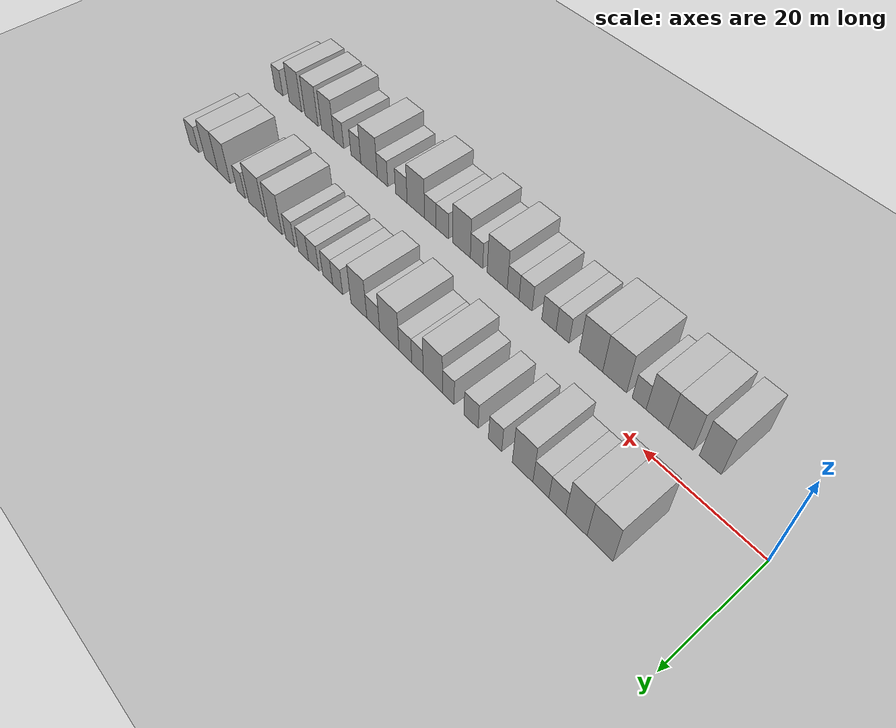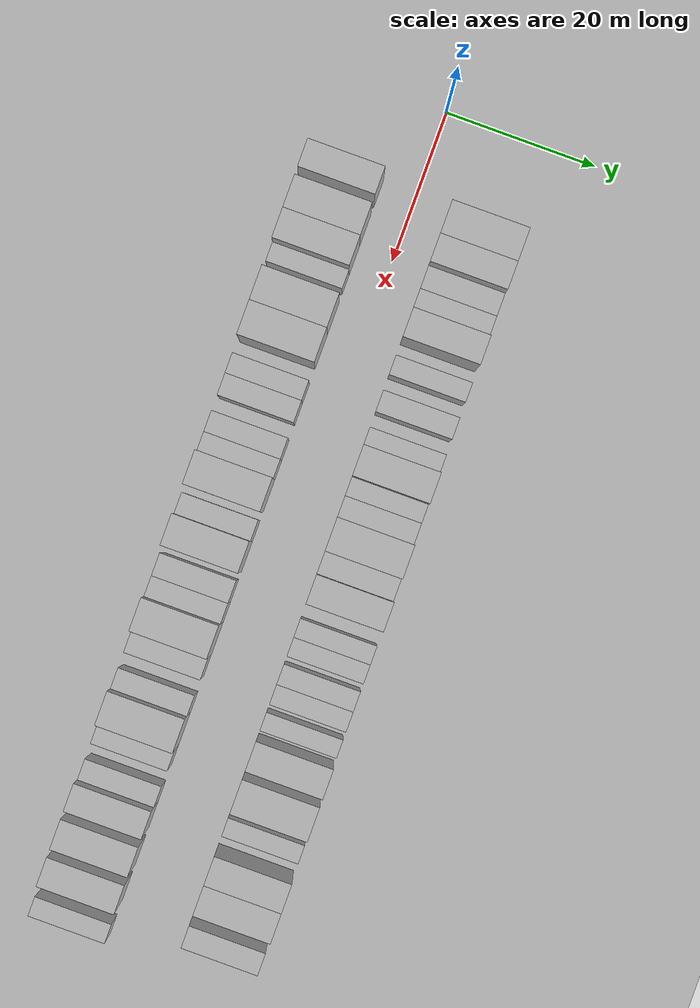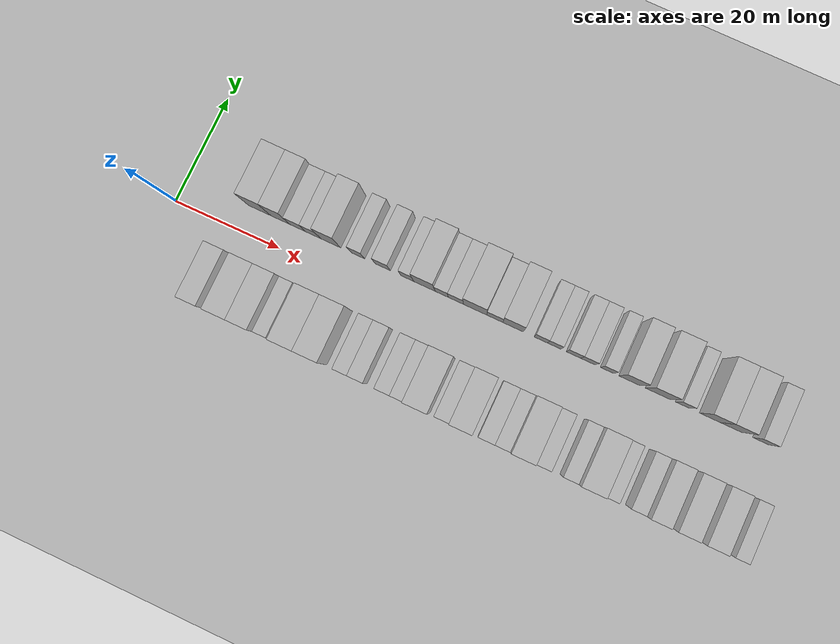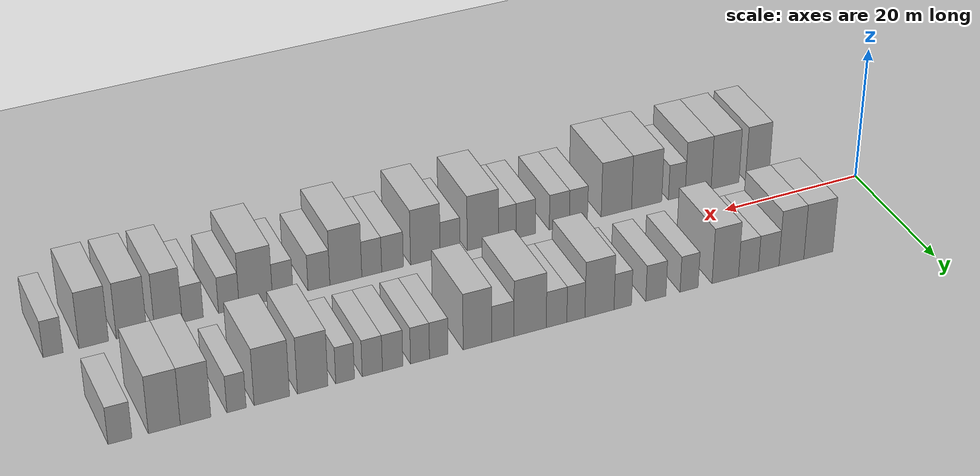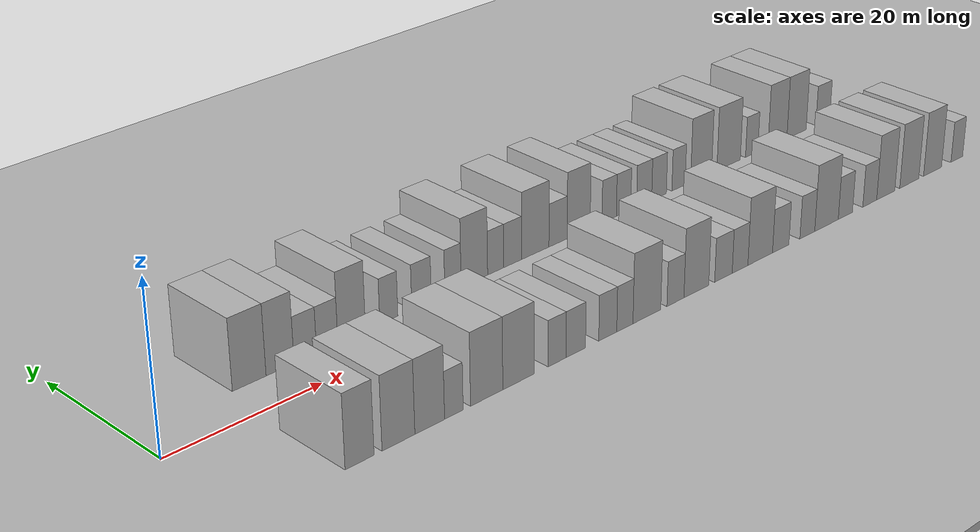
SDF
<sdf version="1.6">
 <world name="default">
  <include><name>ground_plane_1</name><uri>model://HANNAS_ground_plane</uri></include>
  <include>
   <name>ground_plane_2</name>
   <uri>model://HANNAS_ground_plane</uri>
   <pose>100 0 0  0 0 0</pose>
  </include>
  <model name="building_1">
   <static>1</static>
   <pose>14.1490 9.5000 0 0.000000 0.000000 1.570796</pose>
   <link name="link">
    <pose>0 0 4.50 0 0 0</pose>
    <collision name="collision"><geometry><box><size>10.0000 4.2981 9.0000</size></box></geometry></collision>
    <visual name="visual">
     <cast_shadows>0</cast_shadows>
     <geometry><box><size>10.0000 4.2981 9.0000</size></box></geometry>
     <material>
      <script>
       <uri>model://HANNAS_wall/materials/scripts</uri>
       <uri>model://HANNAS_wall/materials/textures</uri>
       <name>vrc/HANNAS_wall</name>
      </script>
     </material>
    </visual>
   </link>
  </model>
  <model name="building_2">
   <static>1</static>
   <pose>18.1220 9.5000 0 0.000000 0.000000 1.570796</pose>
   <link name="link">
    <pose>0 0 4.50 0 0 0</pose>
    <collision name="collision"><geometry><box><size>10.0000 3.6478 9.0000</size></box></geometry></collision>
    <visual name="visual">
     <cast_shadows>0</cast_shadows>
     <geometry><box><size>10.0000 3.6478 9.0000</size></box></geometry>
     <material>
      <script>
       <uri>model://HANNAS_wall/materials/scripts</uri>
       <uri>model://HANNAS_wall/materials/textures</uri>
       <name>vrc/HANNAS_wall</name>
      </script>
     </material>
    </visual>
   </link>
  </model>
  <model name="building_3">
   <static>1</static>
   <pose>21.4412 9.5000 0 0.000000 0.000000 1.570796</pose>
   <link name="link">
    <pose>0 0 3.00 0 0 0</pose>
    <collision name="collision"><geometry><box><size>10.0000 2.9907 6.0000</size></box></geometry></collision>
    <visual name="visual">
     <cast_shadows>0</cast_shadows>
     <geometry><box><size>10.0000 2.9907 6.0000</size></box></geometry>
     <material>
      <script>
       <uri>model://HANNAS_wall/materials/scripts</uri>
       <uri>model://HANNAS_wall/materials/textures</uri>
       <name>vrc/HANNAS_wall</name>
      </script>
     </material>
    </visual>
   </link>
  </model>
  <model name="building_4">
   <static>1</static>
   <pose>24.3763 9.5000 0 0.000000 0.000000 1.570796</pose>
   <link name="link">
    <pose>0 0 3.00 0 0 0</pose>
    <collision name="collision"><geometry><box><size>10.0000 2.8793 6.0000</size></box></geometry></collision>
    <visual name="visual">
     <cast_shadows>0</cast_shadows>
     <geometry><box><size>10.0000 2.8793 6.0000</size></box></geometry>
     <material>
      <script>
       <uri>model://HANNAS_wall/materials/scripts</uri>
       <uri>model://HANNAS_wall/materials/textures</uri>
       <name>vrc/HANNAS_wall</name>
      </script>
     </material>
    </visual>
   </link>
  </model>
  <model name="building_5">
   <static>1</static>
   <pose>27.7177 9.5000 0 0.000000 0.000000 1.570796</pose>
   <link name="link">
    <pose>0 0 4.50 0 0 0</pose>
    <collision name="collision"><geometry><box><size>10.0000 3.8036 9.0000</size></box></geometry></collision>
    <visual name="visual">
     <cast_shadows>0</cast_shadows>
     <geometry><box><size>10.0000 3.8036 9.0000</size></box></geometry>
     <material>
      <script>
       <uri>model://HANNAS_wall/materials/scripts</uri>
       <uri>model://HANNAS_wall/materials/textures</uri>
       <name>vrc/HANNAS_wall</name>
      </script>
     </material>
    </visual>
   </link>
  </model>
  <model name="building_6">
   <static>1</static>
   <pose>32.9033 9.5000 0 0.000000 0.000000 1.570796</pose>
   <link name="link">
    <pose>0 0 3.00 0 0 0</pose>
    <collision name="collision"><geometry><box><size>10.0000 2.5676 6.0000</size></box></geometry></collision>
    <visual name="visual">
     <cast_shadows>0</cast_shadows>
     <geometry><box><size>10.0000 2.5676 6.0000</size></box></geometry>
     <material>
      <script>
       <uri>model://HANNAS_wall/materials/scripts</uri>
       <uri>model://HANNAS_wall/materials/textures</uri>
       <name>vrc/HANNAS_wall</name>
      </script>
     </material>
    </visual>
   </link>
  </model>
  <model name="building_7">
   <static>1</static>
   <pose>37.6088 9.5000 0 0.000000 0.000000 1.570796</pose>
   <link name="link">
    <pose>0 0 3.00 0 0 0</pose>
    <collision name="collision"><geometry><box><size>10.0000 2.8434 6.0000</size></box></geometry></collision>
    <visual name="visual">
     <cast_shadows>0</cast_shadows>
     <geometry><box><size>10.0000 2.8434 6.0000</size></box></geometry>
     <material>
      <script>
       <uri>model://HANNAS_wall/materials/scripts</uri>
       <uri>model://HANNAS_wall/materials/textures</uri>
       <name>vrc/HANNAS_wall</name>
      </script>
     </material>
    </visual>
   </link>
  </model>
  <model name="building_8">
   <static>1</static>
   <pose>42.2495 9.5000 0 0.000000 0.000000 1.570796</pose>
   <link name="link">
    <pose>0 0 3.00 0 0 0</pose>
    <collision name="collision"><geometry><box><size>10.0000 2.4380 6.0000</size></box></geometry></collision>
    <visual name="visual">
     <cast_shadows>0</cast_shadows>
     <geometry><box><size>10.0000 2.4380 6.0000</size></box></geometry>
     <material>
      <script>
       <uri>model://HANNAS_wall/materials/scripts</uri>
       <uri>model://HANNAS_wall/materials/textures</uri>
       <name>vrc/HANNAS_wall</name>
      </script>
     </material>
    </visual>
   </link>
  </model>
  <model name="building_9">
   <static>1</static>
   <pose>45.4868 9.5000 0 0.000000 0.000000 1.570796</pose>
   <link name="link">
    <pose>0 0 4.50 0 0 0</pose>
    <collision name="collision"><geometry><box><size>10.0000 4.0367 9.0000</size></box></geometry></collision>
    <visual name="visual">
     <cast_shadows>0</cast_shadows>
     <geometry><box><size>10.0000 4.0367 9.0000</size></box></geometry>
     <material>
      <script>
       <uri>model://HANNAS_wall/materials/scripts</uri>
       <uri>model://HANNAS_wall/materials/textures</uri>
       <name>vrc/HANNAS_wall</name>
      </script>
     </material>
    </visual>
   </link>
  </model>
  <model name="building_10">
   <static>1</static>
   <pose>48.7472 9.5000 0 0.000000 0.000000 1.570796</pose>
   <link name="link">
    <pose>0 0 3.00 0 0 0</pose>
    <collision name="collision"><geometry><box><size>10.0000 2.4840 6.0000</size></box></geometry></collision>
    <visual name="visual">
     <cast_shadows>0</cast_shadows>
     <geometry><box><size>10.0000 2.4840 6.0000</size></box></geometry>
     <material>
      <script>
       <uri>model://HANNAS_wall/materials/scripts</uri>
       <uri>model://HANNAS_wall/materials/textures</uri>
       <name>vrc/HANNAS_wall</name>
      </script>
     </material>
    </visual>
   </link>
  </model>
  <model name="building_11">
   <static>1</static>
   <pose>51.4006 9.5000 0 0.000000 0.000000 1.570796</pose>
   <link name="link">
    <pose>0 0 3.00 0 0 0</pose>
    <collision name="collision"><geometry><box><size>10.0000 2.8228 6.0000</size></box></geometry></collision>
    <visual name="visual">
     <cast_shadows>0</cast_shadows>
     <geometry><box><size>10.0000 2.8228 6.0000</size></box></geometry>
     <material>
      <script>
       <uri>model://HANNAS_wall/materials/scripts</uri>
       <uri>model://HANNAS_wall/materials/textures</uri>
       <name>vrc/HANNAS_wall</name>
      </script>
     </material>
    </visual>
   </link>
  </model>
  <model name="building_12">
   <static>1</static>
   <pose>55.0039 9.5000 0 0.000000 0.000000 1.570796</pose>
   <link name="link">
    <pose>0 0 4.50 0 0 0</pose>
    <collision name="collision"><geometry><box><size>10.0000 4.3839 9.0000</size></box></geometry></collision>
    <visual name="visual">
     <cast_shadows>0</cast_shadows>
     <geometry><box><size>10.0000 4.3839 9.0000</size></box></geometry>
     <material>
      <script>
       <uri>model://HANNAS_wall/materials/scripts</uri>
       <uri>model://HANNAS_wall/materials/textures</uri>
       <name>vrc/HANNAS_wall</name>
      </script>
     </material>
    </visual>
   </link>
  </model>
  <model name="building_13">
   <static>1</static>
   <pose>58.6897 9.5000 0 0.000000 0.000000 1.570796</pose>
   <link name="link">
    <pose>0 0 3.00 0 0 0</pose>
    <collision name="collision"><geometry><box><size>10.0000 2.9877 6.0000</size></box></geometry></collision>
    <visual name="visual">
     <cast_shadows>0</cast_shadows>
     <geometry><box><size>10.0000 2.9877 6.0000</size></box></geometry>
     <material>
      <script>
       <uri>model://HANNAS_wall/materials/scripts</uri>
       <uri>model://HANNAS_wall/materials/textures</uri>
       <name>vrc/HANNAS_wall</name>
      </script>
     </material>
    </visual>
   </link>
  </model>
  <model name="building_14">
   <static>1</static>
   <pose>62.0949 9.5000 0 0.000000 0.000000 1.570796</pose>
   <link name="link">
    <pose>0 0 4.50 0 0 0</pose>
    <collision name="collision"><geometry><box><size>10.0000 3.8226 9.0000</size></box></geometry></collision>
    <visual name="visual">
     <cast_shadows>0</cast_shadows>
     <geometry><box><size>10.0000 3.8226 9.0000</size></box></geometry>
     <material>
      <script>
       <uri>model://HANNAS_wall/materials/scripts</uri>
       <uri>model://HANNAS_wall/materials/textures</uri>
       <name>vrc/HANNAS_wall</name>
      </script>
     </material>
    </visual>
   </link>
  </model>
  <model name="building_15">
   <static>1</static>
   <pose>67.2365 9.5000 0 0.000000 0.000000 1.570796</pose>
   <link name="link">
    <pose>0 0 3.00 0 0 0</pose>
    <collision name="collision"><geometry><box><size>10.0000 2.4606 6.0000</size></box></geometry></collision>
    <visual name="visual">
     <cast_shadows>0</cast_shadows>
     <geometry><box><size>10.0000 2.4606 6.0000</size></box></geometry>
     <material>
      <script>
       <uri>model://HANNAS_wall/materials/scripts</uri>
       <uri>model://HANNAS_wall/materials/textures</uri>
       <name>vrc/HANNAS_wall</name>
      </script>
     </material>
    </visual>
   </link>
  </model>
  <model name="building_16">
   <static>1</static>
   <pose>69.7130 9.5000 0 0.000000 0.000000 1.570796</pose>
   <link name="link">
    <pose>0 0 3.00 0 0 0</pose>
    <collision name="collision"><geometry><box><size>10.0000 2.4924 6.0000</size></box></geometry></collision>
    <visual name="visual">
     <cast_shadows>0</cast_shadows>
     <geometry><box><size>10.0000 2.4924 6.0000</size></box></geometry>
     <material>
      <script>
       <uri>model://HANNAS_wall/materials/scripts</uri>
       <uri>model://HANNAS_wall/materials/textures</uri>
       <name>vrc/HANNAS_wall</name>
      </script>
     </material>
    </visual>
   </link>
  </model>
  <model name="building_17">
   <static>1</static>
   <pose>73.2931 9.5000 0 0.000000 0.000000 1.570796</pose>
   <link name="link">
    <pose>0 0 3.00 0 0 0</pose>
    <collision name="collision"><geometry><box><size>10.0000 2.6680 6.0000</size></box></geometry></collision>
    <visual name="visual">
     <cast_shadows>0</cast_shadows>
     <geometry><box><size>10.0000 2.6680 6.0000</size></box></geometry>
     <material>
      <script>
       <uri>model://HANNAS_wall/materials/scripts</uri>
       <uri>model://HANNAS_wall/materials/textures</uri>
       <name>vrc/HANNAS_wall</name>
      </script>
     </material>
    </visual>
   </link>
  </model>
  <model name="building_18">
   <static>1</static>
   <pose>75.9414 9.5000 0 0.000000 0.000000 1.570796</pose>
   <link name="link">
    <pose>0 0 3.00 0 0 0</pose>
    <collision name="collision"><geometry><box><size>10.0000 2.6286 6.0000</size></box></geometry></collision>
    <visual name="visual">
     <cast_shadows>0</cast_shadows>
     <geometry><box><size>10.0000 2.6286 6.0000</size></box></geometry>
     <material>
      <script>
       <uri>model://HANNAS_wall/materials/scripts</uri>
       <uri>model://HANNAS_wall/materials/textures</uri>
       <name>vrc/HANNAS_wall</name>
      </script>
     </material>
    </visual>
   </link>
  </model>
  <model name="building_19">
   <static>1</static>
   <pose>79.4634 9.5000 0 0.000000 0.000000 1.570796</pose>
   <link name="link">
    <pose>0 0 3.00 0 0 0</pose>
    <collision name="collision"><geometry><box><size>10.0000 2.4155 6.0000</size></box></geometry></collision>
    <visual name="visual">
     <cast_shadows>0</cast_shadows>
     <geometry><box><size>10.0000 2.4155 6.0000</size></box></geometry>
     <material>
      <script>
       <uri>model://HANNAS_wall/materials/scripts</uri>
       <uri>model://HANNAS_wall/materials/textures</uri>
       <name>vrc/HANNAS_wall</name>
      </script>
     </material>
    </visual>
   </link>
  </model>
  <model name="building_20">
   <static>1</static>
   <pose>83.6192 9.5000 0 0.000000 0.000000 1.570796</pose>
   <link name="link">
    <pose>0 0 4.50 0 0 0</pose>
    <collision name="collision"><geometry><box><size>10.0000 3.8961 9.0000</size></box></geometry></collision>
    <visual name="visual">
     <cast_shadows>0</cast_shadows>
     <geometry><box><size>10.0000 3.8961 9.0000</size></box></geometry>
     <material>
      <script>
       <uri>model://HANNAS_wall/materials/scripts</uri>
       <uri>model://HANNAS_wall/materials/textures</uri>
       <name>vrc/HANNAS_wall</name>
      </script>
     </material>
    </visual>
   </link>
  </model>
  <model name="building_21">
   <static>1</static>
   <pose>88.8030 9.5000 0 0.000000 0.000000 1.570796</pose>
   <link name="link">
    <pose>0 0 4.50 0 0 0</pose>
    <collision name="collision"><geometry><box><size>10.0000 4.4713 9.0000</size></box></geometry></collision>
    <visual name="visual">
     <cast_shadows>0</cast_shadows>
     <geometry><box><size>10.0000 4.4713 9.0000</size></box></geometry>
     <material>
      <script>
       <uri>model://HANNAS_wall/materials/scripts</uri>
       <uri>model://HANNAS_wall/materials/textures</uri>
       <name>vrc/HANNAS_wall</name>
      </script>
     </material>
    </visual>
   </link>
  </model>
  <model name="building_22">
   <static>1</static>
   <pose>93.2414 9.5000 0 0.000000 0.000000 1.570796</pose>
   <link name="link">
    <pose>0 0 3.00 0 0 0</pose>
    <collision name="collision"><geometry><box><size>10.0000 2.4057 6.0000</size></box></geometry></collision>
    <visual name="visual">
     <cast_shadows>0</cast_shadows>
     <geometry><box><size>10.0000 2.4057 6.0000</size></box></geometry>
     <material>
      <script>
       <uri>model://HANNAS_wall/materials/scripts</uri>
       <uri>model://HANNAS_wall/materials/textures</uri>
       <name>vrc/HANNAS_wall</name>
      </script>
     </material>
    </visual>
   </link>
  </model>
  <model name="building_23">
   <static>1</static>
   <pose>98.3310 9.5000 0 0.000000 0.000000 1.570796</pose>
   <link name="link">
    <pose>0 0 4.50 0 0 0</pose>
    <collision name="collision"><geometry><box><size>10.0000 3.7735 9.0000</size></box></geometry></collision>
    <visual name="visual">
     <cast_shadows>0</cast_shadows>
     <geometry><box><size>10.0000 3.7735 9.0000</size></box></geometry>
     <material>
      <script>
       <uri>model://HANNAS_wall/materials/scripts</uri>
       <uri>model://HANNAS_wall/materials/textures</uri>
       <name>vrc/HANNAS_wall</name>
      </script>
     </material>
    </visual>
   </link>
  </model>
  <model name="building_24">
   <static>1</static>
   <pose>102.1723 9.5000 0 0.000000 0.000000 1.570796</pose>
   <link name="link">
    <pose>0 0 4.50 0 0 0</pose>
    <collision name="collision"><geometry><box><size>10.0000 3.9090 9.0000</size></box></geometry></collision>
    <visual name="visual">
     <cast_shadows>0</cast_shadows>
     <geometry><box><size>10.0000 3.9090 9.0000</size></box></geometry>
     <material>
      <script>
       <uri>model://HANNAS_wall/materials/scripts</uri>
       <uri>model://HANNAS_wall/materials/textures</uri>
       <name>vrc/HANNAS_wall</name>
      </script>
     </material>
    </visual>
   </link>
  </model>
  <model name="building_25">
   <static>1</static>
   <pose>107.5789 9.5000 0 0.000000 0.000000 1.570796</pose>
   <link name="link">
    <pose>0 0 3.00 0 0 0</pose>
    <collision name="collision"><geometry><box><size>10.0000 2.9042 6.0000</size></box></geometry></collision>
    <visual name="visual">
     <cast_shadows>0</cast_shadows>
     <geometry><box><size>10.0000 2.9042 6.0000</size></box></geometry>
     <material>
      <script>
       <uri>model://HANNAS_wall/materials/scripts</uri>
       <uri>model://HANNAS_wall/materials/textures</uri>
       <name>vrc/HANNAS_wall</name>
      </script>
     </material>
    </visual>
   </link>
  </model>
  <model name="building_50">
   <static>1</static>
   <pose>12.8102 -9.5000 0 0.000000 0.000000 1.570796</pose>
   <link name="link">
    <pose>0 0 4.50 0 0 0</pose>
    <collision name="collision"><geometry><box><size>10.0000 3.6204 9.0000</size></box></geometry></collision>
    <visual name="visual">
     <cast_shadows>0</cast_shadows>
     <geometry><box><size>10.0000 3.6204 9.0000</size></box></geometry>
     <material>
      <script>
       <uri>model://HANNAS_wall/materials/scripts</uri>
       <uri>model://HANNAS_wall/materials/textures</uri>
       <name>vrc/HANNAS_wall</name>
      </script>
     </material>
    </visual>
   </link>
  </model>
  <model name="building_51">
   <static>1</static>
   <pose>17.7341 -9.5000 0 0.000000 0.000000 1.570796</pose>
   <link name="link">
    <pose>0 0 4.50 0 0 0</pose>
    <collision name="collision"><geometry><box><size>10.0000 4.2273 9.0000</size></box></geometry></collision>
    <visual name="visual">
     <cast_shadows>0</cast_shadows>
     <geometry><box><size>10.0000 4.2273 9.0000</size></box></geometry>
     <material>
      <script>
       <uri>model://HANNAS_wall/materials/scripts</uri>
       <uri>model://HANNAS_wall/materials/textures</uri>
       <name>vrc/HANNAS_wall</name>
      </script>
     </material>
    </visual>
   </link>
  </model>
  <model name="building_52">
   <static>1</static>
   <pose>21.8055 -9.5000 0 0.000000 0.000000 1.570796</pose>
   <link name="link">
    <pose>0 0 4.50 0 0 0</pose>
    <collision name="collision"><geometry><box><size>10.0000 3.9156 9.0000</size></box></geometry></collision>
    <visual name="visual">
     <cast_shadows>0</cast_shadows>
     <geometry><box><size>10.0000 3.9156 9.0000</size></box></geometry>
     <material>
      <script>
       <uri>model://HANNAS_wall/materials/scripts</uri>
       <uri>model://HANNAS_wall/materials/textures</uri>
       <name>vrc/HANNAS_wall</name>
      </script>
     </material>
    </visual>
   </link>
  </model>
  <model name="building_53">
   <static>1</static>
   <pose>25.0127 -9.5000 0 0.000000 0.000000 1.570796</pose>
   <link name="link">
    <pose>0 0 3.00 0 0 0</pose>
    <collision name="collision"><geometry><box><size>10.0000 2.4988 6.0000</size></box></geometry></collision>
    <visual name="visual">
     <cast_shadows>0</cast_shadows>
     <geometry><box><size>10.0000 2.4988 6.0000</size></box></geometry>
     <material>
      <script>
       <uri>model://HANNAS_wall/materials/scripts</uri>
       <uri>model://HANNAS_wall/materials/textures</uri>
       <name>vrc/HANNAS_wall</name>
      </script>
     </material>
    </visual>
   </link>
  </model>
  <model name="building_54">
   <static>1</static>
   <pose>29.4958 -9.5000 0 0.000000 0.000000 1.570796</pose>
   <link name="link">
    <pose>0 0 4.50 0 0 0</pose>
    <collision name="collision"><geometry><box><size>10.0000 4.4674 9.0000</size></box></geometry></collision>
    <visual name="visual">
     <cast_shadows>0</cast_shadows>
     <geometry><box><size>10.0000 4.4674 9.0000</size></box></geometry>
     <material>
      <script>
       <uri>model://HANNAS_wall/materials/scripts</uri>
       <uri>model://HANNAS_wall/materials/textures</uri>
       <name>vrc/HANNAS_wall</name>
      </script>
     </material>
    </visual>
   </link>
  </model>
  <model name="building_55">
   <static>1</static>
   <pose>33.9651 -9.5000 0 0.000000 0.000000 1.570796</pose>
   <link name="link">
    <pose>0 0 4.50 0 0 0</pose>
    <collision name="collision"><geometry><box><size>10.0000 4.4711 9.0000</size></box></geometry></collision>
    <visual name="visual">
     <cast_shadows>0</cast_shadows>
     <geometry><box><size>10.0000 4.4711 9.0000</size></box></geometry>
     <material>
      <script>
       <uri>model://HANNAS_wall/materials/scripts</uri>
       <uri>model://HANNAS_wall/materials/textures</uri>
       <name>vrc/HANNAS_wall</name>
      </script>
     </material>
    </visual>
   </link>
  </model>
  <model name="building_56">
   <static>1</static>
   <pose>39.5212 -9.5000 0 0.000000 0.000000 1.570796</pose>
   <link name="link">
    <pose>0 0 3.00 0 0 0</pose>
    <collision name="collision"><geometry><box><size>10.0000 2.6412 6.0000</size></box></geometry></collision>
    <visual name="visual">
     <cast_shadows>0</cast_shadows>
     <geometry><box><size>10.0000 2.6412 6.0000</size></box></geometry>
     <material>
      <script>
       <uri>model://HANNAS_wall/materials/scripts</uri>
       <uri>model://HANNAS_wall/materials/textures</uri>
       <name>vrc/HANNAS_wall</name>
      </script>
     </material>
    </visual>
   </link>
  </model>
  <model name="building_57">
   <static>1</static>
   <pose>42.2902 -9.5000 0 0.000000 0.000000 1.570796</pose>
   <link name="link">
    <pose>0 0 3.00 0 0 0</pose>
    <collision name="collision"><geometry><box><size>10.0000 2.8967 6.0000</size></box></geometry></collision>
    <visual name="visual">
     <cast_shadows>0</cast_shadows>
     <geometry><box><size>10.0000 2.8967 6.0000</size></box></geometry>
     <material>
      <script>
       <uri>model://HANNAS_wall/materials/scripts</uri>
       <uri>model://HANNAS_wall/materials/textures</uri>
       <name>vrc/HANNAS_wall</name>
      </script>
     </material>
    </visual>
   </link>
  </model>
  <model name="building_58">
   <static>1</static>
   <pose>47.1221 -9.5000 0 0.000000 0.000000 1.570796</pose>
   <link name="link">
    <pose>0 0 3.00 0 0 0</pose>
    <collision name="collision"><geometry><box><size>10.0000 2.7672 6.0000</size></box></geometry></collision>
    <visual name="visual">
     <cast_shadows>0</cast_shadows>
     <geometry><box><size>10.0000 2.7672 6.0000</size></box></geometry>
     <material>
      <script>
       <uri>model://HANNAS_wall/materials/scripts</uri>
       <uri>model://HANNAS_wall/materials/textures</uri>
       <name>vrc/HANNAS_wall</name>
      </script>
     </material>
    </visual>
   </link>
  </model>
  <model name="building_59">
   <static>1</static>
   <pose>49.7668 -9.5000 0 0.000000 0.000000 1.570796</pose>
   <link name="link">
    <pose>0 0 3.00 0 0 0</pose>
    <collision name="collision"><geometry><box><size>10.0000 2.5222 6.0000</size></box></geometry></collision>
    <visual name="visual">
     <cast_shadows>0</cast_shadows>
     <geometry><box><size>10.0000 2.5222 6.0000</size></box></geometry>
     <material>
      <script>
       <uri>model://HANNAS_wall/materials/scripts</uri>
       <uri>model://HANNAS_wall/materials/textures</uri>
       <name>vrc/HANNAS_wall</name>
      </script>
     </material>
    </visual>
   </link>
  </model>
  <model name="building_60">
   <static>1</static>
   <pose>53.2330 -9.5000 0 0.000000 0.000000 1.570796</pose>
   <link name="link">
    <pose>0 0 4.50 0 0 0</pose>
    <collision name="collision"><geometry><box><size>10.0000 4.4102 9.0000</size></box></geometry></collision>
    <visual name="visual">
     <cast_shadows>0</cast_shadows>
     <geometry><box><size>10.0000 4.4102 9.0000</size></box></geometry>
     <material>
      <script>
       <uri>model://HANNAS_wall/materials/scripts</uri>
       <uri>model://HANNAS_wall/materials/textures</uri>
       <name>vrc/HANNAS_wall</name>
      </script>
     </material>
    </visual>
   </link>
  </model>
  <model name="building_61">
   <static>1</static>
   <pose>57.8266 -9.5000 0 0.000000 0.000000 1.570796</pose>
   <link name="link">
    <pose>0 0 3.00 0 0 0</pose>
    <collision name="collision"><geometry><box><size>10.0000 2.7769 6.0000</size></box></geometry></collision>
    <visual name="visual">
     <cast_shadows>0</cast_shadows>
     <geometry><box><size>10.0000 2.7769 6.0000</size></box></geometry>
     <material>
      <script>
       <uri>model://HANNAS_wall/materials/scripts</uri>
       <uri>model://HANNAS_wall/materials/textures</uri>
       <name>vrc/HANNAS_wall</name>
      </script>
     </material>
    </visual>
   </link>
  </model>
  <model name="building_62">
   <static>1</static>
   <pose>61.2742 -9.5000 0 0.000000 0.000000 1.570796</pose>
   <link name="link">
    <pose>0 0 4.50 0 0 0</pose>
    <collision name="collision"><geometry><box><size>10.0000 4.1184 9.0000</size></box></geometry></collision>
    <visual name="visual">
     <cast_shadows>0</cast_shadows>
     <geometry><box><size>10.0000 4.1184 9.0000</size></box></geometry>
     <material>
      <script>
       <uri>model://HANNAS_wall/materials/scripts</uri>
       <uri>model://HANNAS_wall/materials/textures</uri>
       <name>vrc/HANNAS_wall</name>
      </script>
     </material>
    </visual>
   </link>
  </model>
  <model name="building_63">
   <static>1</static>
   <pose>65.8296 -9.5000 0 0.000000 0.000000 1.570796</pose>
   <link name="link">
    <pose>0 0 3.00 0 0 0</pose>
    <collision name="collision"><geometry><box><size>10.0000 2.9925 6.0000</size></box></geometry></collision>
    <visual name="visual">
     <cast_shadows>0</cast_shadows>
     <geometry><box><size>10.0000 2.9925 6.0000</size></box></geometry>
     <material>
      <script>
       <uri>model://HANNAS_wall/materials/scripts</uri>
       <uri>model://HANNAS_wall/materials/textures</uri>
       <name>vrc/HANNAS_wall</name>
      </script>
     </material>
    </visual>
   </link>
  </model>
  <model name="building_64">
   <static>1</static>
   <pose>68.6869 -9.5000 0 0.000000 0.000000 1.570796</pose>
   <link name="link">
    <pose>0 0 3.00 0 0 0</pose>
    <collision name="collision"><geometry><box><size>10.0000 2.7219 6.0000</size></box></geometry></collision>
    <visual name="visual">
     <cast_shadows>0</cast_shadows>
     <geometry><box><size>10.0000 2.7219 6.0000</size></box></geometry>
     <material>
      <script>
       <uri>model://HANNAS_wall/materials/scripts</uri>
       <uri>model://HANNAS_wall/materials/textures</uri>
       <name>vrc/HANNAS_wall</name>
      </script>
     </material>
    </visual>
   </link>
  </model>
  <model name="building_65">
   <static>1</static>
   <pose>72.2196 -9.5000 0 0.000000 0.000000 1.570796</pose>
   <link name="link">
    <pose>0 0 4.50 0 0 0</pose>
    <collision name="collision"><geometry><box><size>10.0000 4.3436 9.0000</size></box></geometry></collision>
    <visual name="visual">
     <cast_shadows>0</cast_shadows>
     <geometry><box><size>10.0000 4.3436 9.0000</size></box></geometry>
     <material>
      <script>
       <uri>model://HANNAS_wall/materials/scripts</uri>
       <uri>model://HANNAS_wall/materials/textures</uri>
       <name>vrc/HANNAS_wall</name>
      </script>
     </material>
    </visual>
   </link>
  </model>
  <model name="building_66">
   <static>1</static>
   <pose>75.8660 -9.5000 0 0.000000 0.000000 1.570796</pose>
   <link name="link">
    <pose>0 0 3.00 0 0 0</pose>
    <collision name="collision"><geometry><box><size>10.0000 2.9491 6.0000</size></box></geometry></collision>
    <visual name="visual">
     <cast_shadows>0</cast_shadows>
     <geometry><box><size>10.0000 2.9491 6.0000</size></box></geometry>
     <material>
      <script>
       <uri>model://HANNAS_wall/materials/scripts</uri>
       <uri>model://HANNAS_wall/materials/textures</uri>
       <name>vrc/HANNAS_wall</name>
      </script>
     </material>
    </visual>
   </link>
  </model>
  <model name="building_67">
   <static>1</static>
   <pose>80.7142 -9.5000 0 0.000000 0.000000 1.570796</pose>
   <link name="link">
    <pose>0 0 3.00 0 0 0</pose>
    <collision name="collision"><geometry><box><size>10.0000 2.7474 6.0000</size></box></geometry></collision>
    <visual name="visual">
     <cast_shadows>0</cast_shadows>
     <geometry><box><size>10.0000 2.7474 6.0000</size></box></geometry>
     <material>
      <script>
       <uri>model://HANNAS_wall/materials/scripts</uri>
       <uri>model://HANNAS_wall/materials/textures</uri>
       <name>vrc/HANNAS_wall</name>
      </script>
     </material>
    </visual>
   </link>
  </model>
  <model name="building_68">
   <static>1</static>
   <pose>84.2987 -9.5000 0 0.000000 0.000000 1.570796</pose>
   <link name="link">
    <pose>0 0 4.50 0 0 0</pose>
    <collision name="collision"><geometry><box><size>10.0000 4.4216 9.0000</size></box></geometry></collision>
    <visual name="visual">
     <cast_shadows>0</cast_shadows>
     <geometry><box><size>10.0000 4.4216 9.0000</size></box></geometry>
     <material>
      <script>
       <uri>model://HANNAS_wall/materials/scripts</uri>
       <uri>model://HANNAS_wall/materials/textures</uri>
       <name>vrc/HANNAS_wall</name>
      </script>
     </material>
    </visual>
   </link>
  </model>
  <model name="building_69">
   <static>1</static>
   <pose>87.8723 -9.5000 0 0.000000 0.000000 1.570796</pose>
   <link name="link">
    <pose>0 0 3.00 0 0 0</pose>
    <collision name="collision"><geometry><box><size>10.0000 2.7256 6.0000</size></box></geometry></collision>
    <visual name="visual">
     <cast_shadows>0</cast_shadows>
     <geometry><box><size>10.0000 2.7256 6.0000</size></box></geometry>
     <material>
      <script>
       <uri>model://HANNAS_wall/materials/scripts</uri>
       <uri>model://HANNAS_wall/materials/textures</uri>
       <name>vrc/HANNAS_wall</name>
      </script>
     </material>
    </visual>
   </link>
  </model>
  <model name="building_70">
   <static>1</static>
   <pose>92.5999 -9.5000 0 0.000000 0.000000 1.570796</pose>
   <link name="link">
    <pose>0 0 3.00 0 0 0</pose>
    <collision name="collision"><geometry><box><size>10.0000 2.7297 6.0000</size></box></geometry></collision>
    <visual name="visual">
     <cast_shadows>0</cast_shadows>
     <geometry><box><size>10.0000 2.7297 6.0000</size></box></geometry>
     <material>
      <script>
       <uri>model://HANNAS_wall/materials/scripts</uri>
       <uri>model://HANNAS_wall/materials/textures</uri>
       <name>vrc/HANNAS_wall</name>
      </script>
     </material>
    </visual>
   </link>
  </model>
  <model name="building_71">
   <static>1</static>
   <pose>95.7715 -9.5000 0 0.000000 0.000000 1.570796</pose>
   <link name="link">
    <pose>0 0 4.50 0 0 0</pose>
    <collision name="collision"><geometry><box><size>10.0000 3.6134 9.0000</size></box></geometry></collision>
    <visual name="visual">
     <cast_shadows>0</cast_shadows>
     <geometry><box><size>10.0000 3.6134 9.0000</size></box></geometry>
     <material>
      <script>
       <uri>model://HANNAS_wall/materials/scripts</uri>
       <uri>model://HANNAS_wall/materials/textures</uri>
       <name>vrc/HANNAS_wall</name>
      </script>
     </material>
    </visual>
   </link>
  </model>
  <model name="building_72">
   <static>1</static>
   <pose>100.5190 -9.5000 0 0.000000 0.000000 1.570796</pose>
   <link name="link">
    <pose>0 0 4.50 0 0 0</pose>
    <collision name="collision"><geometry><box><size>10.0000 3.8817 9.0000</size></box></geometry></collision>
    <visual name="visual">
     <cast_shadows>0</cast_shadows>
     <geometry><box><size>10.0000 3.8817 9.0000</size></box></geometry>
     <material>
      <script>
       <uri>model://HANNAS_wall/materials/scripts</uri>
       <uri>model://HANNAS_wall/materials/textures</uri>
       <name>vrc/HANNAS_wall</name>
      </script>
     </material>
    </visual>
   </link>
  </model>
  <model name="building_73">
   <static>1</static>
   <pose>105.3382 -9.5000 0 0.000000 0.000000 1.570796</pose>
   <link name="link">
    <pose>0 0 4.50 0 0 0</pose>
    <collision name="collision"><geometry><box><size>10.0000 3.7567 9.0000</size></box></geometry></collision>
    <visual name="visual">
     <cast_shadows>0</cast_shadows>
     <geometry><box><size>10.0000 3.7567 9.0000</size></box></geometry>
     <material>
      <script>
       <uri>model://HANNAS_wall/materials/scripts</uri>
       <uri>model://HANNAS_wall/materials/textures</uri>
       <name>vrc/HANNAS_wall</name>
      </script>
     </material>
    </visual>
   </link>
  </model>
  <model name="building_74">
   <static>1</static>
   <pose>110.4724 -9.5000 0 0.000000 0.000000 1.570796</pose>
   <link name="link">
    <pose>0 0 3.00 0 0 0</pose>
    <collision name="collision"><geometry><box><size>10.0000 2.5118 6.0000</size></box></geometry></collision>
    <visual name="visual">
     <cast_shadows>0</cast_shadows>
     <geometry><box><size>10.0000 2.5118 6.0000</size></box></geometry>
     <material>
      <script>
       <uri>model://HANNAS_wall/materials/scripts</uri>
       <uri>model://HANNAS_wall/materials/textures</uri>
       <name>vrc/HANNAS_wall</name>
      </script>
     </material>
    </visual>
   </link>
  </model>
 </world>
</sdf>
